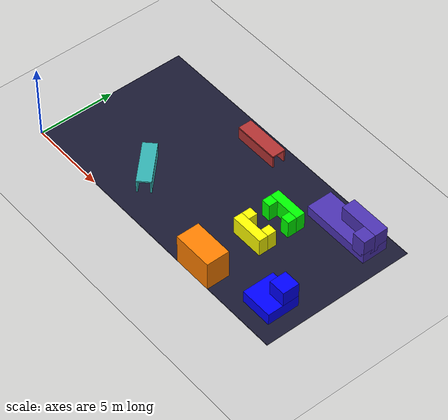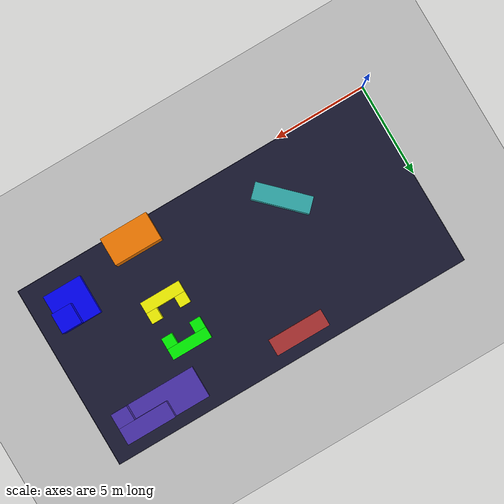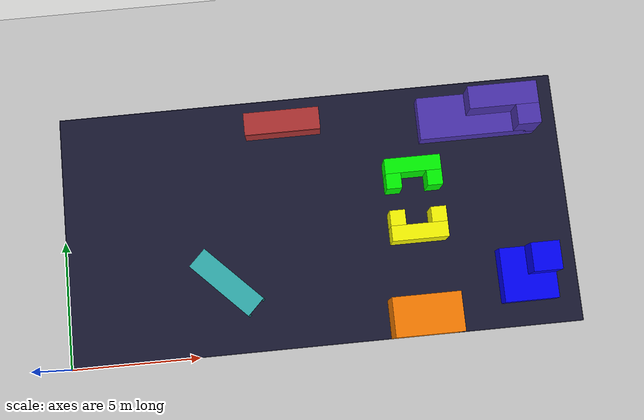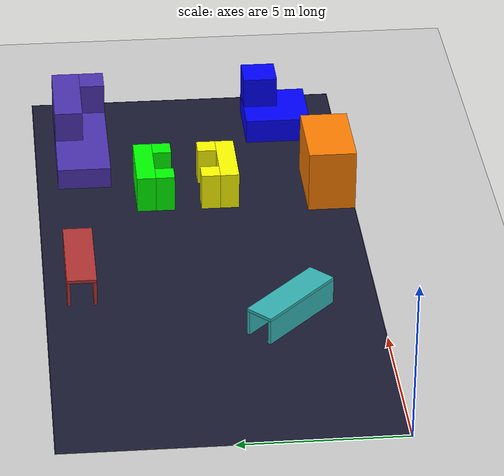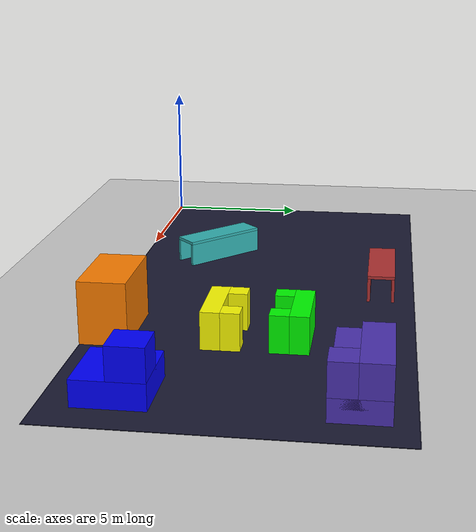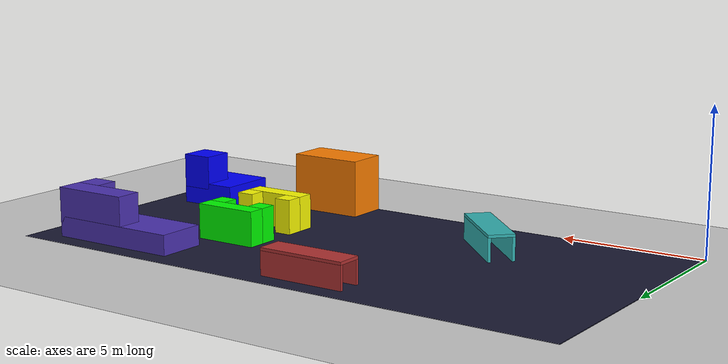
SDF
<sdf version='1.9'>
  <world name='default'>
    <physics type="ode">
      <max_step_size>0.004</max_step_size>
      <real_time_factor>1.0</real_time_factor>
      <real_time_update_rate>250</real_time_update_rate>
    </physics>
    <plugin name='gz::sim::systems::Physics' filename='gz-sim-physics-system'/>
    <plugin name='gz::sim::systems::UserCommands' filename='gz-sim-user-commands-system'/>
    <plugin name='gz::sim::systems::SceneBroadcaster' filename='gz-sim-scene-broadcaster-system'/>
    <plugin name='gz::sim::systems::Contact' filename='gz-sim-contact-system'/>
    <plugin name='gz::sim::systems::Imu' filename='gz-sim-imu-system'/>
    <plugin name='gz::sim::systems::AirPressure' filename='gz-sim-air-pressure-system'/>
    <plugin name='gz::sim::systems::NavSat' filename='gz-sim-navsat-system'/>
    <plugin name='gz::sim::systems::Sensors' filename='gz-sim-sensors-system'>
      <render_engine>ogre2</render_engine>
    </plugin>
    <gui fullscreen='false'>
      <plugin name='3D View' filename='GzScene3D'>
        <gz-gui>
          <title>3D View</title>
          <property type='bool' key='showTitleBar'>0</property>
          <property type='string' key='state'>docked</property>
        </gz-gui>
        <engine>ogre2</engine>
        <scene>scene</scene>
        <ambient_light>0.5984631152222222 0.5984631152222222 0.5984631152222222</ambient_light>
        <background_color>0.8984631152222222 0.8984631152222222 0.8984631152222222</background_color>
        <camera_pose>-6 0 6 0 0.5 0</camera_pose>
      </plugin>
      <plugin name='World control' filename='WorldControl'>
        <gz-gui>
          <title>World control</title>
          <property type='bool' key='showTitleBar'>0</property>
          <property type='bool' key='resizable'>0</property>
          <property type='double' key='height'>72</property>
          <property type='double' key='width'>121</property>
          <property type='double' key='z'>1</property>
          <property type='string' key='state'>floating</property>
          <anchors target='3D View'>
            <line own='left' target='left'/>
            <line own='bottom' target='bottom'/>
          </anchors>
        </gz-gui>
        <play_pause>1</play_pause>
        <step>1</step>
        <start_paused>1</start_paused>
      </plugin>
      <plugin name='World stats' filename='WorldStats'>
        <gz-gui>
          <title>World stats</title>
          <property type='bool' key='showTitleBar'>0</property>
          <property type='bool' key='resizable'>0</property>
          <property type='double' key='height'>110</property>
          <property type='double' key='width'>290</property>
          <property type='double' key='z'>1</property>
          <property type='string' key='state'>floating</property>
          <anchors target='3D View'>
            <line own='right' target='right'/>
            <line own='bottom' target='bottom'/>
          </anchors>
        </gz-gui>
        <sim_time>1</sim_time>
        <real_time>1</real_time>
        <real_time_factor>1</real_time_factor>
        <iterations>1</iterations>
      </plugin>
      <plugin name='Entity tree' filename='EntityTree'/>
    </gui>
    <gravity>0 0 -9.8</gravity>
    <magnetic_field>6e-06 2.3e-05 -4.2e-05</magnetic_field>
    <atmosphere type='adiabatic'/>
    <scene>
      <grid>false</grid>
      <ambient>0.4 0.4 0.4 1</ambient>
      <background>0.7 0.7 0.7 1</background>
      <shadows>true</shadows>
    </scene>
    <model name='ground_plane'>
      <static>true</static>
      <link name='link'>
        <collision name='collision'>
          <geometry>
            <plane>
              <normal>0 0 1</normal>
              <size>1 1</size>
            </plane>
          </geometry>
          <surface>
            <friction>
              <ode/>
            </friction>
            <bounce/>
            <contact/>
          </surface>
        </collision>
        <visual name='visual'>
          <geometry>
            <plane>
              <normal>0 0 1</normal>
              <size>100 100</size>
            </plane>
          </geometry>
          <material>
            <ambient>0.8 0.8 0.8 1</ambient>
            <diffuse>0.8 0.8 0.8 1</diffuse>
            <specular>0.8 0.8 0.8 1</specular>
          </material>
        </visual>
        <pose>0 0 0 0 -0 0</pose>
        <inertial>
          <pose>0 0 0 0 -0 0</pose>
          <mass>1</mass>
          <inertia>
            <ixx>1</ixx>
            <ixy>0</ixy>
            <ixz>0</ixz>
            <iyy>1</iyy>
            <iyz>0</iyz>
            <izz>1</izz>
          </inertia>
        </inertial>
        <enable_wind>false</enable_wind>
      </link>
      <pose>0 0 0 0 -0 0</pose>
      <self_collide>false</self_collide>
    </model>

    <model name="arena">
      <pose>10.025 5.025 0 0 0 0</pose>
      <static>true</static>
      <link name="link">
          <inertial>
              <mass>1000.0</mass>
              <inertia>
                  <ixx>1.0</ixx>
                  <ixy>0.0</ixy>
                  <ixz>0.0</ixz>
                  <iyy>1.0</iyy>
                  <iyz>0.0</iyz>
                  <izz>1.0</izz>
              </inertia>
          </inertial>
          <collision name="collision">
              <geometry>
                  <box>
                      <size>20.05 10.05 0.005</size>
                  </box>
              </geometry>
          </collision>
          <visual name="visual">
              <geometry>
                  <box>
                      <size>20.05 10.05 0.005</size>
                  </box>
              </geometry>
              <material>
                  <ambient>0.0 0.9 0.0 1</ambient>
                  <diffuse>0.1 0.1 0.2 1</diffuse>
                  <specular>0 0 0 0</specular>
                  <emissive>0 0 0 1</emissive>
              </material>
          </visual>
      </link>
      <link name="link2">
          <pose>0 0 0.005 0 0 0</pose>
          <inertial>
              <mass>1000.0</mass>
              <inertia>
                  <ixx>1.0</ixx>
                  <ixy>0.0</ixy>
                  <ixz>0.0</ixz>
                  <iyy>1.0</iyy>
                  <iyz>0.0</iyz>
                  <izz>1.0</izz>
              </inertia>
          </inertial>
          <collision name="collision">
              <geometry>
                  <box>
                      <size>20 10 0.005</size>
                  </box>
              </geometry>
          </collision>
          <visual name="visual">
              <geometry>
                  <box>
                      <size>20 10 0.005</size>
                  </box>
              </geometry>
              <material>
                  <ambient>0.9 0.9 0.9 1</ambient>
                  <diffuse>0.1 0.1 0.2 1</diffuse>
                  <specular>0 0 0 0</specular>
                  <emissive>0 0 0 1</emissive>
              </material>
          </visual>
      </link>
    </model>

    <model name="building_06">
        <pose>17.975 2. 0.40 0 0 0</pose>
        <static>true</static>
        <link name="link">
            <inertial>
                <mass>1000.0</mass>
                <inertia>
                    <ixx>1.0</ixx>
                    <ixy>0.0</ixy>
                    <ixz>0.0</ixz>
                    <iyy>1.0</iyy>
                    <iyz>0.0</iyz>
                    <izz>1.0</izz>
                </inertia>
            </inertial>
            <collision name="collision">
                <geometry>
                    <box>
                        <size>2.1 2.1 0.80</size>
                    </box>
                </geometry>
            </collision>
            <visual name="visual">
                <geometry>
                    <box>
                        <size>2.1 2.1 0.80</size>
                    </box>
                </geometry>
                <material>
                    <ambient>0.0 0.0 1.0 1</ambient>
                    <diffuse>0.0 0.0 1.0 1</diffuse>
                    <specular>0 0 0 0</specular>
                    <emissive>0 0 0 1</emissive>
                </material>
            </visual>
        </link>
        <link name="link2">
            <pose>0.5 0.5 0.8 0 0 0</pose>
            <inertial>
                <mass>1000.0</mass>
                <inertia>
                    <ixx>1.0</ixx>
                    <ixy>0.0</ixy>
                    <ixz>0.0</ixz>
                    <iyy>1.0</iyy>
                    <iyz>0.0</iyz>
                    <izz>1.0</izz>
                </inertia>
            </inertial>
            <collision name="collision">
                <geometry>
                    <box>
                        <size>1.10 1.10 1.2</size>
                    </box>
                </geometry>
            </collision>
            <visual name="visual">
                <geometry>
                    <box>
                        <size>1.10 1.10 1.2</size>
                    </box>
                </geometry>
                <material>
                    <ambient>0.0 0.0 1.0 1</ambient>
                    <diffuse>0.0 0.0 1.0 1</diffuse>
                    <specular>0 0 0 0</specular>
                    <emissive>0 0 0 1</emissive>
                </material>
            </visual>
        </link>
    </model>

    <model name="building_09">
        <pose>13.775 0.75 1.00 0 0 0</pose>
        <static>true</static>
        <link name="link">
            <inertial>
                <mass>1000.0</mass>
                <inertia>
                    <ixx>1.0</ixx>
                    <ixy>0.0</ixy>
                    <ixz>0.0</ixz>
                    <iyy>1.0</iyy>
                    <iyz>0.0</iyz>
                    <izz>1.0</izz>
                </inertia>
            </inertial>
            <collision name="collision">
                <geometry>
                    <box>
                        <size>2.6 1.5 2.0</size>
                    </box>
                </geometry>
            </collision>
            <visual name="visual">
                <geometry>
                    <box>
                        <size>2.6 1.5 2.0</size>
                    </box>
                </geometry>
                <material>
                    <ambient>1.0 0.5 0.0 1</ambient>
                    <diffuse>1.0 0.5 0.0 1</diffuse>
                    <specular>0 0 0 0</specular>
                    <emissive>0 0 0 1</emissive>
                </material>
            </visual>
        </link>
    </model>

    <model name="building_03a">
        <pose>13.925 6.625 0.60 0 0 0</pose>
        <static>true</static>
        <link name="link">
            <inertial>
                <mass>1000.0</mass>
                <inertia>
                    <ixx>1.0</ixx>
                    <ixy>0.0</ixy>
                    <ixz>0.0</ixz>
                    <iyy>1.0</iyy>
                    <iyz>0.0</iyz>
                    <izz>1.0</izz>
                </inertia>
            </inertial>
            <collision name="collision">
                <geometry>
                    <box>
                        <size>2.20 0.6 1.20</size>
                    </box>
                </geometry>
            </collision>
            <visual name="visual">
                <geometry>
                    <box>
                        <size>2.20 0.6 1.20</size>
                    </box>
                </geometry>
                <material>
                    <ambient>0.0 1.0 0.0 1</ambient>
                    <diffuse>0.0 1.0 0.0 1</diffuse>
                    <specular>0 0 0 0</specular>
                    <emissive>0 0 0 1</emissive>
                </material>
            </visual>
        </link>
        <link name="link2">
            <pose>0.8 -0.6 0 0 0 0</pose>
            <inertial>
                <mass>1000.0</mass>
                <inertia>
                    <ixx>1.0</ixx>
                    <ixy>0.0</ixy>
                    <ixz>0.0</ixz>
                    <iyy>1.0</iyy>
                    <iyz>0.0</iyz>
                    <izz>1.0</izz>
                </inertia>
            </inertial>
            <collision name="collision">
                <geometry>
                    <box>
                        <size>.6 0.6 1.20</size>
                    </box>
                </geometry>
            </collision>
            <visual name="visual">
                <geometry>
                    <box>
                        <size>.6 0.6 1.20</size>
                    </box>
                </geometry>
                <material>
                    <ambient>0.0 1.0 0.0 1</ambient>
                    <diffuse>0.0 1.0 0.0 1</diffuse>
                    <specular>0 0 0 0</specular>
                    <emissive>0 0 0 1</emissive>
                </material>
            </visual>
        </link>
        <link name="link3">
            <pose>-0.8 -0.6 0 0 0 0</pose>
            <inertial>
                <mass>1000.0</mass>
                <inertia>
                    <ixx>1.0</ixx>
                    <ixy>0.0</ixy>
                    <ixz>0.0</ixz>
                    <iyy>1.0</iyy>
                    <iyz>0.0</iyz>
                    <izz>1.0</izz>
                </inertia>
            </inertial>
            <collision name="collision">
                <geometry>
                    <box>
                        <size>.6 0.6 1.20</size>
                    </box>
                </geometry>
            </collision>
            <visual name="visual">
                <geometry>
                    <box>
                        <size>.6 0.6 1.20</size>
                    </box>
                </geometry>
                <material>
                    <ambient>0.0 1.0 0.0 1</ambient>
                    <diffuse>0.0 1.0 0.0 1</diffuse>
                    <specular>0 0 0 0</specular>
                    <emissive>0 0 0 1</emissive>
                </material>
            </visual>
        </link>
    </model>

    <model name="building_03b">
        <pose>13.925 3.975 0.60 0 0 0</pose>
        <static>true</static>
        <link name="link">
            <inertial>
                <mass>1000.0</mass>
                <inertia>
                    <ixx>1.0</ixx>
                    <ixy>0.0</ixy>
                    <ixz>0.0</ixz>
                    <iyy>1.0</iyy>
                    <iyz>0.0</iyz>
                    <izz>1.0</izz>
                </inertia>
            </inertial>
            <collision name="collision">
                <geometry>
                    <box>
                        <size>2.20 0.6 1.20</size>
                    </box>
                </geometry>
            </collision>
            <visual name="visual">
                <geometry>
                    <box>
                        <size>2.20 0.6 1.20</size>
                    </box>
                </geometry>
                <material>
                    <ambient>1.0 1.0 0.0 1</ambient>
                    <diffuse>1.0 1.0 0.0 1</diffuse>
                    <specular>0 0 0 0</specular>
                    <emissive>0 0 0 1</emissive>
                </material>
            </visual>
        </link>
        <link name="link2">
            <pose>0.8 0.6 0 0 0 0</pose>
            <inertial>
                <mass>1000.0</mass>
                <inertia>
                    <ixx>1.0</ixx>
                    <ixy>0.0</ixy>
                    <ixz>0.0</ixz>
                    <iyy>1.0</iyy>
                    <iyz>0.0</iyz>
                    <izz>1.0</izz>
                </inertia>
            </inertial>
            <collision name="collision">
                <geometry>
                    <box>
                        <size>.6 0.6 1.20</size>
                    </box>
                </geometry>
            </collision>
            <visual name="visual">
                <geometry>
                    <box>
                        <size>.6 0.6 1.20</size>
                    </box>
                </geometry>
                <material>
                    <ambient>1.0 1.0 0.0 1</ambient>
                    <diffuse>1.0 1.0 0.0 1</diffuse>
                    <specular>0 0 0 0</specular>
                    <emissive>0 0 0 1</emissive>
                </material>
            </visual>
        </link>
        <link name="link3">
            <pose>-0.8 0.6 0 0 0 0</pose>
            <inertial>
                <mass>1000.0</mass>
                <inertia>
                    <ixx>1.0</ixx>
                    <ixy>0.0</ixy>
                    <ixz>0.0</ixz>
                    <iyy>1.0</iyy>
                    <iyz>0.0</iyz>
                    <izz>1.0</izz>
                </inertia>
            </inertial>
            <collision name="collision">
                <geometry>
                    <box>
                        <size>.6 0.6 1.20</size>
                    </box>
                </geometry>
            </collision>
            <visual name="visual">
                <geometry>
                    <box>
                        <size>.6 0.6 1.20</size>
                    </box>
                </geometry>
                <material>
                    <ambient>1.0 1.0 0.0 1</ambient>
                    <diffuse>1.0 1.0 0.0 1</diffuse>
                    <specular>0 0 0 0</specular>
                    <emissive>0 0 0 1</emissive>
                </material>
            </visual>
        </link>
    </model>

    <model name="building_10">
        <pose>16.725 8.525 0.35 0 0 0</pose>
        <static>true</static>
        <link name="link">
            <inertial>
                <mass>1000.0</mass>
                <inertia>
                    <ixx>1.0</ixx>
                    <ixy>0.0</ixy>
                    <ixz>0.0</ixz>
                    <iyy>1.0</iyy>
                    <iyz>0.0</iyz>
                    <izz>1.0</izz>
                </inertia>
            </inertial>
            <collision name="collision">
                <geometry>
                    <box>
                        <size>4.6 1.7 0.70</size>
                    </box>
                </geometry>
            </collision>
            <visual name="visual">
                <geometry>
                    <box>
                        <size>4.6 1.7 0.70</size>
                    </box>
                </geometry>
                <material>
                    <ambient>0.3 0.2 0.7 1</ambient>
                    <diffuse>0.3 0.2 0.7 1</diffuse>
                    <specular>0 0 0 0</specular>
                    <emissive>0 0 0 1</emissive>
                </material>
            </visual>
        </link>
        <link name="link2">
            <pose>0.95 0.4 0.7 0 0 0</pose>
            <inertial>
                <mass>1000.0</mass>
                <inertia>
                    <ixx>1.0</ixx>
                    <ixy>0.0</ixy>
                    <ixz>0.0</ixz>
                    <iyy>1.0</iyy>
                    <iyz>0.0</iyz>
                    <izz>1.0</izz>
                </inertia>
            </inertial>
            <collision name="collision">
                <geometry>
                    <box>
                        <size>2.70 0.90 1.3</size>
                    </box>
                </geometry>
            </collision>
            <visual name="visual">
                <geometry>
                    <box>
                        <size>2.70 0.90 1.3</size>
                    </box>
                </geometry>
                <material>
                    <ambient>0.3 0.2 0.7 1</ambient>
                    <diffuse>0.3 0.2 0.7 1</diffuse>
                    <specular>0 0 0 0</specular>
                    <emissive>0 0 0 1</emissive>
                </material>
            </visual>
        </link>
        <link name="link3">
            <pose>1.85 -0.45 0.7 0 0 0</pose>
            <inertial>
                <mass>1000.0</mass>
                <inertia>
                    <ixx>1.0</ixx>
                    <ixy>0.0</ixy>
                    <ixz>0.0</ixz>
                    <iyy>1.0</iyy>
                    <iyz>0.0</iyz>
                    <izz>1.0</izz>
                </inertia>
            </inertial>
            <collision name="collision">
                <geometry>
                    <box>
                        <size>0.90 0.80 1.3</size>
                    </box>
                </geometry>
            </collision>
            <visual name="visual">
                <geometry>
                    <box>
                        <size>0.90 0.80 1.3</size>
                    </box>
                </geometry>
                <material>
                    <ambient>0.3 0.2 0.7 1</ambient>
                    <diffuse>0.3 0.2 0.7 1</diffuse>
                    <specular>0 0 0 0</specular>
                    <emissive>0 0 0 1</emissive>
                </material>
            </visual>
        </link>
    </model>

    <model name="tunnel_00">
        <pose>6.025 2.475 0.4 0 0 -0.7853975</pose>
        <static>true</static>
        <link name="link">
            <inertial>
                <mass>1000.0</mass>
                <inertia>
                    <ixx>1.0</ixx>
                    <ixy>0.0</ixy>
                    <ixz>0.0</ixz>
                    <iyy>1.0</iyy>
                    <iyz>0.0</iyz>
                    <izz>1.0</izz>
                </inertia>
            </inertial>
            <collision name="collision">
                <geometry>
                    <box>
                        <size>3 0.1 0.80</size>
                    </box>
                </geometry>
            </collision>
            <visual name="visual">
                <geometry>
                    <box>
                        <size>3 0.1 0.80</size>
                    </box>
                </geometry>
                <material>
                    <ambient>0.2 0.7 0.7 1</ambient>
                    <diffuse>0.2 0.7 0.7 1</diffuse>
                    <specular>0 0 0 0</specular>
                    <emissive>0 0 0 1</emissive>
                </material>
            </visual>
        </link>
        <link name="link1">
            <pose>0 0.8 0 0 0 0</pose>
            <inertial>
                <mass>1000.0</mass>
                <inertia>
                    <ixx>1.0</ixx>
                    <ixy>0.0</ixy>
                    <ixz>0.0</ixz>
                    <iyy>1.0</iyy>
                    <iyz>0.0</iyz>
                    <izz>1.0</izz>
                </inertia>
            </inertial>
            <collision name="collision">
                <geometry>
                    <box>
                        <size>3 0.1 0.80</size>
                    </box>
                </geometry>
            </collision>
            <visual name="visual">
                <geometry>
                    <box>
                        <size>3 0.1 0.80</size>
                    </box>
                </geometry>
                <material>
                    <ambient>0.2 0.7 0.7 1</ambient>
                    <diffuse>0.2 0.7 0.7 1</diffuse>
                    <specular>0 0 0 0</specular>
                    <emissive>0 0 0 1</emissive>
                </material>
            </visual>
        </link>
        <link name="link2">
            <pose>0 0.4 0.45 0 0 0</pose>
            <inertial>
                <mass>1000.0</mass>
                <inertia>
                    <ixx>1.0</ixx>
                    <ixy>0.0</ixy>
                    <ixz>0.0</ixz>
                    <iyy>1.0</iyy>
                    <iyz>0.0</iyz>
                    <izz>1.0</izz>
                </inertia>
            </inertial>
            <collision name="collision">
                <geometry>
                    <box>
                        <size>3 0.9 0.10</size>
                    </box>
                </geometry>
            </collision>
            <visual name="visual">
                <geometry>
                    <box>
                        <size>3 0.9 0.10</size>
                    </box>
                </geometry>
                <material>
                    <ambient>0.2 0.7 0.7 1</ambient>
                    <diffuse>0.2 0.7 0.7 1</diffuse>
                    <specular>0 0 0 0</specular>
                    <emissive>0 0 0 1</emissive>
                </material>
            </visual>
        </link>
    </model>

    <model name="tunnel_01">
        <pose>9.0 8.525 0.4 0 0 0</pose>
        <static>true</static>
        <link name="link">
            <inertial>
                <mass>1000.0</mass>
                <inertia>
                    <ixx>1.0</ixx>
                    <ixy>0.0</ixy>
                    <ixz>0.0</ixz>
                    <iyy>1.0</iyy>
                    <iyz>0.0</iyz>
                    <izz>1.0</izz>
                </inertia>
            </inertial>
            <collision name="collision">
                <geometry>
                    <box>
                        <size>3 0.1 0.80</size>
                    </box>
                </geometry>
            </collision>
            <visual name="visual">
                <geometry>
                    <box>
                        <size>3 0.1 0.80</size>
                    </box>
                </geometry>
                <material>
                    <ambient>0.7 0.2 0.2 1</ambient>
                    <diffuse>0.7 0.2 0.2 1</diffuse>
                    <specular>0 0 0 0</specular>
                    <emissive>0 0 0 1</emissive>
                </material>
            </visual>
        </link>
        <link name="link1">
            <pose>0 0.8 0 0 0 0</pose>
            <inertial>
                <mass>1000.0</mass>
                <inertia>
                    <ixx>1.0</ixx>
                    <ixy>0.0</ixy>
                    <ixz>0.0</ixz>
                    <iyy>1.0</iyy>
                    <iyz>0.0</iyz>
                    <izz>1.0</izz>
                </inertia>
            </inertial>
            <collision name="collision">
                <geometry>
                    <box>
                        <size>3 0.1 0.80</size>
                    </box>
                </geometry>
            </collision>
            <visual name="visual">
                <geometry>
                    <box>
                        <size>3 0.1 0.80</size>
                    </box>
                </geometry>
                <material>
                    <ambient>0.7 0.2 0.2 1</ambient>
                    <diffuse>0.7 0.2 0.2 1</diffuse>
                    <specular>0 0 0 0</specular>
                    <emissive>0 0 0 1</emissive>
                </material>
            </visual>
        </link>
        <link name="link2">
            <pose>0 0.4 0.45 0 0 0</pose>
            <inertial>
                <mass>1000.0</mass>
                <inertia>
                    <ixx>1.0</ixx>
                    <ixy>0.0</ixy>
                    <ixz>0.0</ixz>
                    <iyy>1.0</iyy>
                    <iyz>0.0</iyz>
                    <izz>1.0</izz>
                </inertia>
            </inertial>
            <collision name="collision">
                <geometry>
                    <box>
                        <size>3 0.9 0.10</size>
                    </box>
                </geometry>
            </collision>
            <visual name="visual">
                <geometry>
                    <box>
                        <size>3 0.9 0.10</size>
                    </box>
                </geometry>
                <material>
                    <ambient>0.7 0.2 0.2 1</ambient>
                    <diffuse>0.7 0.2 0.2 1</diffuse>
                    <specular>0 0 0 0</specular>
                    <emissive>0 0 0 1</emissive>
                </material>
            </visual>
        </link>
    </model>

    <light name='sunUTC' type='directional'>
      <pose>0 0 500 0 -0 0</pose>
      <cast_shadows>true</cast_shadows>
      <intensity>1</intensity>
      <direction>0.001 0.625 -0.78</direction>
      <diffuse>0.904 0.904 0.904 1</diffuse>
      <specular>0.271 0.271 0.271 1</specular>
      <attenuation>
        <range>2000</range>
        <linear>0</linear>
        <constant>1</constant>
        <quadratic>0</quadratic>
      </attenuation>
      <spot>
        <inner_angle>0</inner_angle>
        <outer_angle>0</outer_angle>
        <falloff>0</falloff>
      </spot>
    </light>
  </world>
</sdf>
